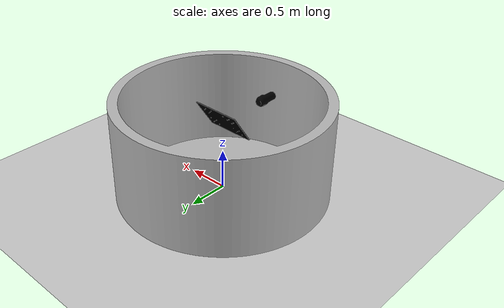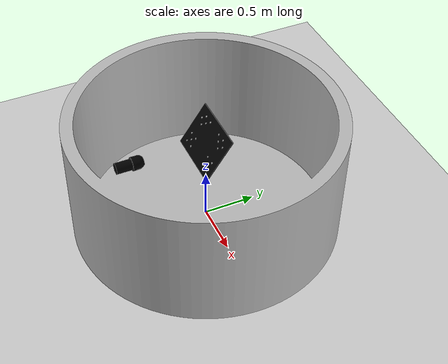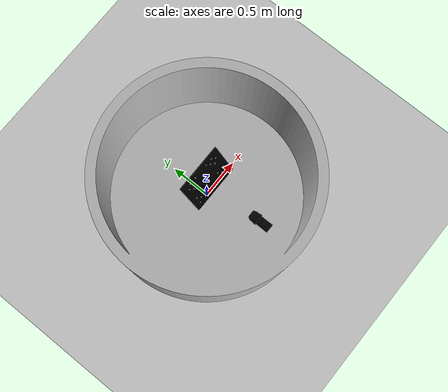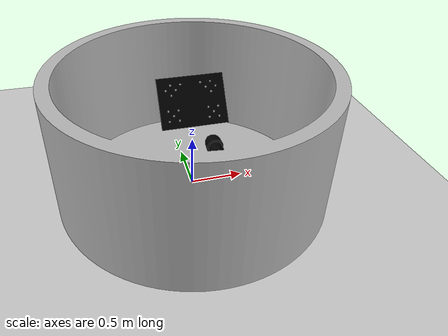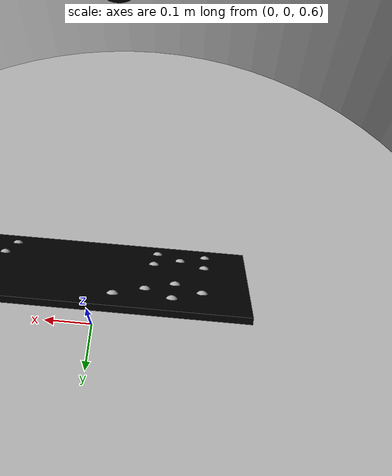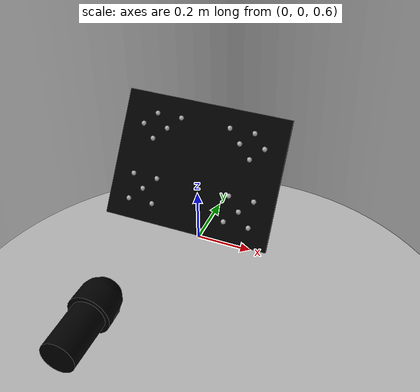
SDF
<?xml version="1.0" ?>
<sdf version="1.6">
  <world name="default">
    <include>
      <uri>model://ground_plane</uri>
    </include>
    <include>
      <uri>model://sun</uri>
    </include>

    <gui>
      <camera name='user_camera'>
        <pose>2.52 -2.65 3.73 0 0.66 2.42</pose>
      </camera>
    </gui>

    <!-- basement tank -->
    <include>
      <uri>model://cylinder_sonar_tank</uri>
      <name>cylinder_sonar_tank</name>
      <pose>0 0 0 0 0 0</pose>
      <static>true</static>
    </include>

    <!-- vertical cylinder target -->

    <!-- horizontal cylinder target -->

    <!-- simple plate target -->
    <!-- Assume that the plate is at the same z position as the sonar -->
    <!-- sonar is at 12" below water surface -->

    <!-- plate model (designed using SolidWorks) -->
    <!-- Plate size : 600 mm x 450 mm, origin at left bottom corner-->
    <!-- Assume that the plate is at the same z position as the sonar -->
    <!-- sonar is at 12" below water surface where the water is ~48" deep -->
    <include>
      <uri>model://plate_target</uri>
      <name>plate_model</name>
      <pose>0 0 0.9144 -0.6 0 0</pose>
      <static>true</static>
    </include>

    <include>
      <uri>model://bolt_target</uri>
      <name>bolt_model</name>
      <pose>0 0 0.9144 -0.6 0 0</pose>
      <static>true</static>
    </include>

    <!-- Oculus m1200d -->
    <!-- Sonar placed at 12" below water surface, 20" from the sonar tank wall -->
    <!-- zero roll and pitch, the water is ~48" deep -->
    <include>
      <uri>model://oculus_m1200d_nps_multibeam_LF</uri>
      <name>oculus_m1200d</name>
      <pose>0 -0.6604 0.9144 0 0 1.5709</pose>
      <static>true</static>
    </include>

  </world>
</sdf>

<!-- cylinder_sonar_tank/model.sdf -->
<sdf version="1.6">
  <model name="cylinder_sonar_tank">
    <link name="link">
      <inertial>
        <pose>0 0 0 0 0 0</pose>
        <mass>1000.0</mass>
        <inertia>
          <ixx>0.083</ixx>
          <ixy>0.0</ixy>
          <ixz>0.0</ixz>
          <iyy>0.083</iyy>
          <iyz>0.0</iyz>
          <izz>0.083</izz>
        </inertia>
      </inertial>
      <collision name="collision">
        <geometry>
          <mesh>
            <uri>model://cylinder_sonar_tank/meshes/cylinder_sonar_tank.stl</uri>
            <!-- inner diameter of 92". The water is ~48" deep -->
            <scale>1.1684 1.1684 0.6096</scale>
          </mesh>
        </geometry>
      </collision>
      <visual name="visual">
        <geometry>
          <mesh>
            <uri>model://cylinder_sonar_tank/meshes/COLLISION_cylinder_sonar_tank.stl</uri>
            <!-- inner diameter of 92". The water is ~48" deep -->
            <scale>1.1684 1.1684 0.6096</scale>
          </mesh>
        </geometry>
      </visual>
    </link>
  </model>
</sdf>

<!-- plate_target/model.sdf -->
<sdf version="1.6">
  <model name="plate_target">
    <link name="link">
      <pose>0 0 0 0 0 0</pose>
      <inertial>
        <mass>10.0</mass>
        <inertia>
          <ixx>0.083</ixx>
          <ixy>0.0</ixy>
          <ixz>0.0</ixz>
          <iyy>0.083</iyy>
          <iyz>0.0</iyz>
          <izz>0.083</izz>
        </inertia>
      </inertial>
      <collision name="collision">
        <geometry>
          <box>
            <!-- 600 mm x 450 mm -->
            <size>0.60 0.01 0.45</size>
          </box>
        </geometry>
      </collision>
      <visual name="visual">
        <geometry>
          <box>
            <!-- 600 mm x 450 mm -->
            <size>0.60 0.01 0.45</size>
          </box>
        </geometry>
        <material> <!-- dark material -->
          <ambient>0 0 0 1</ambient>
          <diffuse>0 0 0 1</diffuse>
          <specular>0 0 0 0</specular>
          <emissive>0 0 0 1</emissive>
        </material>
      </visual>
    </link>
  </model>
</sdf>

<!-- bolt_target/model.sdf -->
<sdf version="1.6">
  <model name="bolt_target">

    <link name="A1">
      <pose>-0.18 0 0.1575 0 0 0</pose>
      <collision name="collision"><geometry><sphere><radius>0.01</radius></sphere></geometry></collision>
      <visual name="visual"><geometry><sphere><radius>0.01</radius></sphere></geometry></visual>
    </link>

    <link name="A2">
      <pose>-0.09 0 0.1575 0 0 0</pose>
      <collision name="collision"><geometry><sphere><radius>0.01</radius></sphere></geometry></collision>
      <visual name="visual"><geometry><sphere><radius>0.01</radius></sphere></geometry></visual>
    </link>

    <link name="A3">
      <pose>-0.225 0 0.1125 0 0 0</pose>
      <collision name="collision"><geometry><sphere><radius>0.01</radius></sphere></geometry></collision>
      <visual name="visual"><geometry><sphere><radius>0.01</radius></sphere></geometry></visual>
    </link>

    <link name="A4">
      <pose>-0.135 0 0.1125 0 0 0</pose>
      <collision name="collision"><geometry><sphere><radius>0.01</radius></sphere></geometry></collision>
      <visual name="visual"><geometry><sphere><radius>0.01</radius></sphere></geometry></visual>
    </link>

    <link name="A5">
      <pose>-0.18 0 0.0675 0 0 0</pose>
      <collision name="collision"><geometry><sphere><radius>0.01</radius></sphere></geometry></collision>
      <visual name="visual"><geometry><sphere><radius>0.01</radius></sphere></geometry></visual>
    </link>

    <link name="B1">
      <pose>0.09 0 0.1575 0 0 0</pose>
      <collision name="collision"><geometry><sphere><radius>0.01</radius></sphere></geometry></collision>
      <visual name="visual"><geometry><sphere><radius>0.01</radius></sphere></geometry></visual>
    </link>

    <link name="B2">
      <pose>0.18 0 0.1575 0 0 0</pose>
      <collision name="collision"><geometry><sphere><radius>0.01</radius></sphere></geometry></collision>
      <visual name="visual"><geometry><sphere><radius>0.01</radius></sphere></geometry></visual>
    </link>

    <link name="B3">
      <pose>0.135 0 0.1125 0 0 0</pose>
      <collision name="collision"><geometry><sphere><radius>0.01</radius></sphere></geometry></collision>
      <visual name="visual"><geometry><sphere><radius>0.01</radius></sphere></geometry></visual>
    </link>

    <link name="B4">
      <pose>0.225 0 0.1125 0 0 0</pose>
      <collision name="collision"><geometry><sphere><radius>0.01</radius></sphere></geometry></collision>
      <visual name="visual"><geometry><sphere><radius>0.01</radius></sphere></geometry></visual>
    </link>

    <link name="B5">
      <pose>0.18 0 0.0675 0 0 0</pose>
      <collision name="collision"><geometry><sphere><radius>0.01</radius></sphere></geometry></collision>
      <visual name="visual"><geometry><sphere><radius>0.01</radius></sphere></geometry></visual>
    </link>

    <link name="C1">
      <pose>-0.225 0 -0.0675 0 0 0</pose>
      <collision name="collision"><geometry><sphere><radius>0.01</radius></sphere></geometry></collision>
      <visual name="visual"><geometry><sphere><radius>0.01</radius></sphere></geometry></visual>
    </link>

    <link name="C2">
      <pose>-0.135 0 -0.0675 0 0 0</pose>
      <collision name="collision"><geometry><sphere><radius>0.01</radius></sphere></geometry></collision>
      <visual name="visual"><geometry><sphere><radius>0.01</radius></sphere></geometry></visual>
    </link>

    <link name="C3">
      <pose>-0.18 0 -0.1125 0 0 0</pose>
      <collision name="collision"><geometry><sphere><radius>0.01</radius></sphere></geometry></collision>
      <visual name="visual"><geometry><sphere><radius>0.01</radius></sphere></geometry></visual>
    </link>

    <link name="C4">
      <pose>-0.225 0 -0.1575 0 0 0</pose>
      <collision name="collision"><geometry><sphere><radius>0.01</radius></sphere></geometry></collision>
      <visual name="visual"><geometry><sphere><radius>0.01</radius></sphere></geometry></visual>
    </link>

    <link name="C5">
      <pose>-0.135 0 -0.1575 0 0 0</pose>
      <collision name="collision"><geometry><sphere><radius>0.01</radius></sphere></geometry></collision>
      <visual name="visual"><geometry><sphere><radius>0.01</radius></sphere></geometry></visual>
    </link>

    <link name="D1">
      <pose>0.135 0 -0.0675 0 0 0</pose>
      <collision name="collision"><geometry><sphere><radius>0.01</radius></sphere></geometry></collision>
      <visual name="visual"><geometry><sphere><radius>0.01</radius></sphere></geometry></visual>
    </link>

    <link name="D2">
      <pose>0.225 0 -0.0675 0 0 0</pose>
      <collision name="collision"><geometry><sphere><radius>0.01</radius></sphere></geometry></collision>
      <visual name="visual"><geometry><sphere><radius>0.01</radius></sphere></geometry></visual>
    </link>

    <link name="D3">
      <pose>0.18 0 -0.1125 0 0 0</pose>
      <collision name="collision"><geometry><sphere><radius>0.01</radius></sphere></geometry></collision>
      <visual name="visual"><geometry><sphere><radius>0.01</radius></sphere></geometry></visual>
    </link>

    <link name="D4">
      <pose>0.135 0 -0.1575 0 0 0</pose>
      <collision name="collision"><geometry><sphere><radius>0.01</radius></sphere></geometry></collision>
      <visual name="visual"><geometry><sphere><radius>0.01</radius></sphere></geometry></visual>
    </link>

    <link name="D5">
      <pose>0.225 0 -0.1575 0 0 0</pose>
      <collision name="collision"><geometry><sphere><radius>0.01</radius></sphere></geometry></collision>
      <visual name="visual"><geometry><sphere><radius>0.01</radius></sphere></geometry></visual>
    </link>

  </model>
</sdf>

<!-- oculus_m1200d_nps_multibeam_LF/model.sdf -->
<sdf version="1.6">
  <model name="oculus_m1200d">
    <link name="forward_sonar_link">
      <inertial>
        <pose>0 0 0 0 0 0</pose>
        <mass>4.35</mass>
        <inertia>
          <ixx>0.0360</ixx>          <!-- 1/12ml^2 -->
          <ixy>0</ixy>
          <ixz>0</ixz>
          <iyy>0</iyy>
          <iyz>0</iyz>
          <izz>0.0360</izz>
        </inertia>
      </inertial>
      <collision name="collision">
        <geometry>
          <mesh>
            <uri>model://oculus_m1200d_nps_multibeam_LF/meshes/COLLISION-p900.dae</uri>
          </mesh>
        </geometry>
      </collision>
      <visual name="visual">
        <geometry>
          <mesh>
            <uri>model://oculus_m1200d_nps_multibeam_LF/meshes/p900.dae</uri>
          </mesh>
        </geometry>
        <material> <!-- bright material -->
          <ambient>0 0 0 1</ambient>
          <diffuse>0 0 0 1</diffuse>
          <specular>0 0 0 0</specular>
          <emissive>0.2 0.2 1.0 1</emissive>
        </material>
      </visual>

      <sensor name="image_sonar" type="depth">
        <visualize>true</visualize>
        <always_on>true</always_on>
        <update_rate>10</update_rate>
        <camera>
          <!-- 130 degrees for the oculus-m1200d at 1.2MHz mode -->
          <horizontal_fov>2.26893</horizontal_fov>
          <image>
            <width>512</width>
            <!-- Set vertical FOV by setting image height -->
            <!-- For 20 deg. -->
            <height>79</height>
            <format>R8G8B8</format>
          </image>
          <clip>
            <near>0.01</near>            <!-- optimal 2m-60m -->
            <far>30</far>
          </clip>
          <depth_camera>
            <output>depths</output>
          </depth_camera>
          <save enabled="false">
            <path>/tmp/camera</path>
          </save>
        </camera>
        <plugin filename="libnps_multibeam_sonar_ros_plugin.so" name="forward_sonar">
          <!-- Sonar properties -->
          <sonarFreq>1200e3</sonarFreq>
          <bandwidth>265.5e3</bandwidth>
          <soundSpeed>1500</soundSpeed>
          <sourceLevel>150</sourceLevel>
          <maxDistance>2</maxDistance>
          <constantReflectivity>false</constantReflectivity>
          <!-- The CSV databsefile is located at the worlds folder -->
          <reflectivityDatabaseFile>variationalReflectivityDatabase_APL.csv</reflectivityDatabaseFile>
          <sensorGain>1</sensorGain>
          <plotScaler>5</plotScaler>
          <writeLog>true</writeLog>
          <debugFlag>false</debugFlag>
          <writeFrameInterval>5</writeFrameInterval>
          <!-- This name is prepended to ROS topics -->
          <cameraName>oculus_m1200d</cameraName>
          <!-- ROS publication topics -->
          <imageTopicName>image_raw</imageTopicName>
          <cameraInfoTopicName>image_raw/camera_info</cameraInfoTopicName>
          <pointCloudTopicName>point_cloud</pointCloudTopicName>
          <depthImageTopicName>image_depth</depthImageTopicName>
          <depthImageCameraInfoTopicName>image_depth/camera_info</depthImageCameraInfoTopicName>
          <sonarImageRawTopicName>sonar_image_raw</sonarImageRawTopicName>
          <sonarImageTopicName>sonar_image</sonarImageTopicName>
          <frameName>forward_sonar_optical_link</frameName>
        </plugin>
      </sensor>
    </link>

    <link name="forward_sonar_beam_visual_link">
      <inertial>
        <pose>0 0 0 0 0 0</pose>
        <mass>0.0001</mass>
        <inertia>
          <ixx>0.0000000017</ixx>          <!-- 1/12ml^2 -->
          <ixy>0</ixy>
          <ixz>0</ixz>
          <iyy>0.00000000017</iyy>
          <iyz>0</iyz>
          <izz>0.00000000017</izz>
        </inertia>
      </inertial>
      <sensor type="ray" name="forward_sonar_beam_visual">
        <pose>0 0 0 0 0 0</pose>
        <update_rate>5</update_rate>
        <visualize>true</visualize>
        <ray>
          <scan>
            <horizontal>
              <samples>100</samples>
              <resolution>1</resolution>
              <min_angle>-1.13446</min_angle>
              <max_angle>1.13446</max_angle>
            </horizontal>
            <vertical>
              <samples>3</samples>
              <resolution>1</resolution>
              <min_angle>-0.174533</min_angle>
              <max_angle>0.174533</max_angle>
            </vertical>
          </scan>
          <range>
            <min>0.2</min>
            <max>30</max>
            <resolution>0.01</resolution>
          </range>
        </ray>
      </sensor>
    </link>

    <joint name="forward_sonar_beam_visual_joint" type="fixed">
      <pose>0 0 0 0 0 0</pose>
      <parent>forward_sonar_link</parent>
      <child>forward_sonar_beam_visual_link</child>
    </joint>
  </model>
</sdf>
